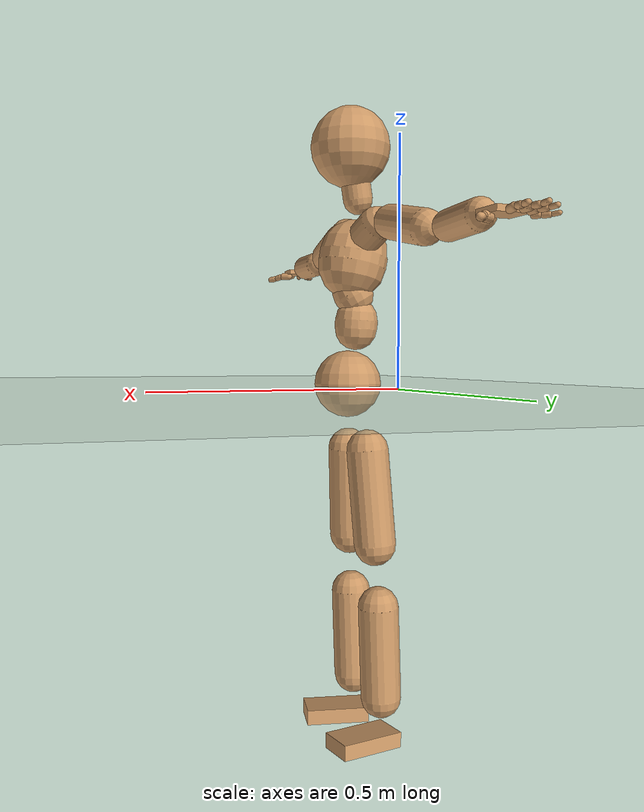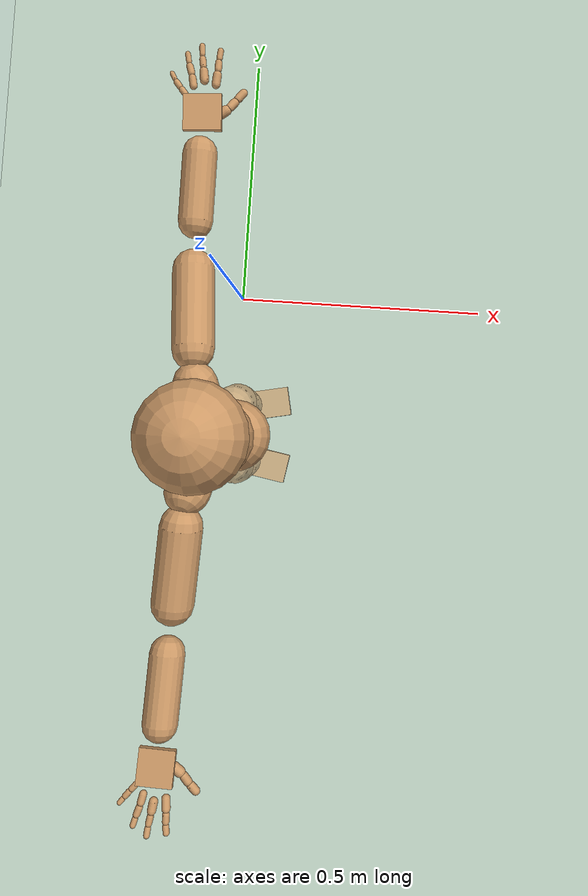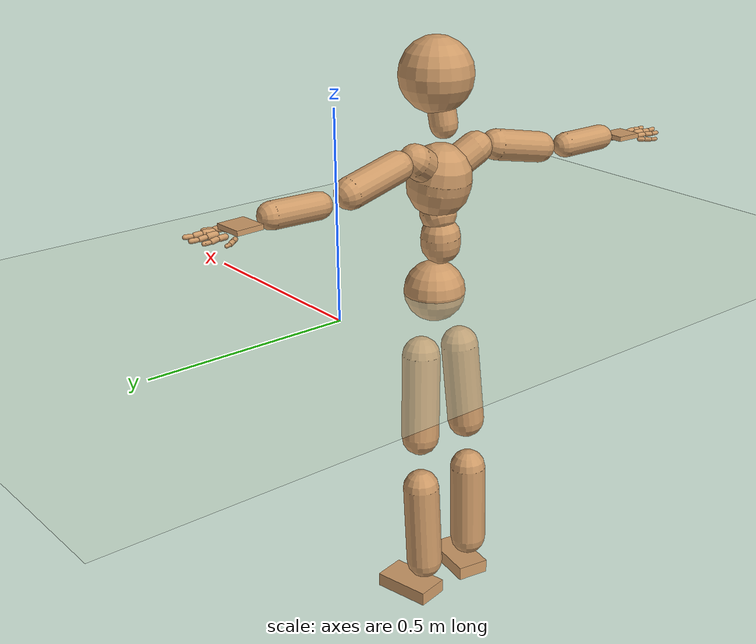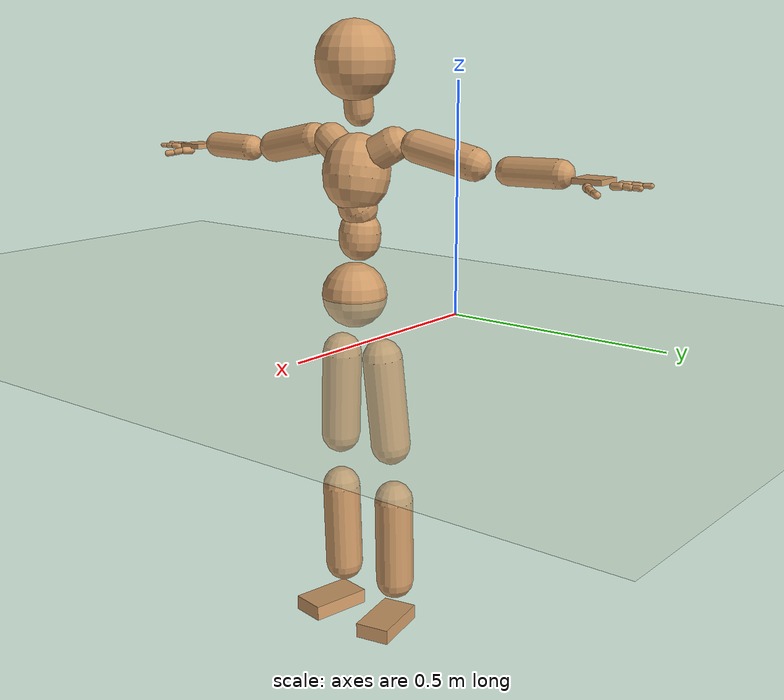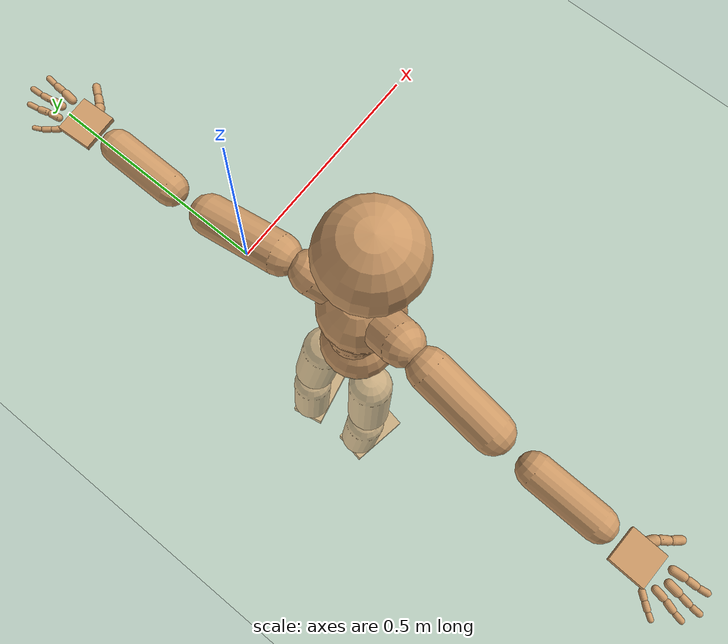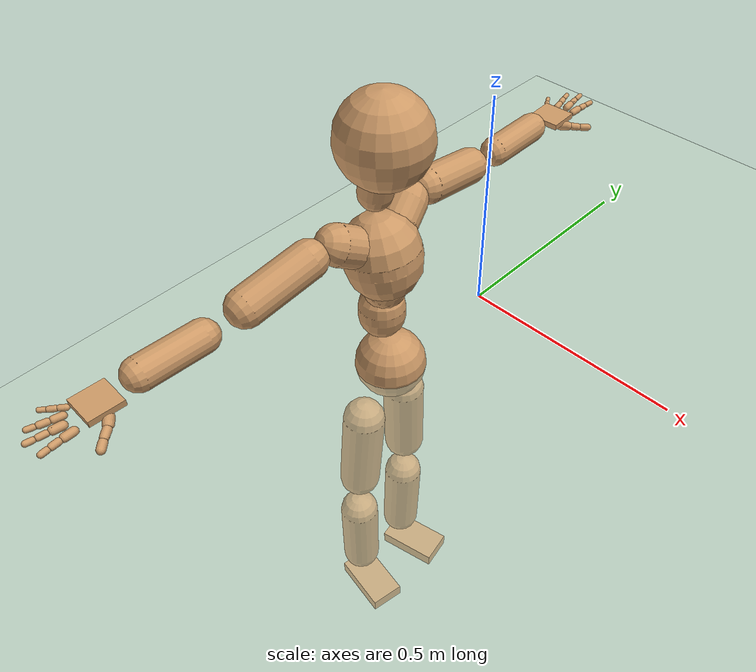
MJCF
<mujoco model="humanoid">
  <compiler coordinate="local" angle="radian"/>
  <default>
    <joint damping="0.0" armature="0.01" stiffness="0.0" limited="true"/>
    <geom conaffinity="1" condim="3" contype="7" margin="0.001" rgba="0.8 0.6 .4 1"/>
  </default>
  <asset>
    <texture type="skybox" builtin="gradient" rgb1=".4 .5 .6" rgb2="0 0 0" width="100" height="100"/>
    <texture builtin="flat" height="1278" mark="cross" markrgb="1 1 1" name="texgeom" random="0.01" rgb1="0.8 0.6 0.4" rgb2="0.8 0.6 0.4" type="cube" width="127"/>
    <texture builtin="checker" height="100" name="texplane" rgb1="0 0 0" rgb2="0.8 0.8 0.8" type="2d" width="100"/>
    <material name="MatPlane" reflectance="0.5" shininess="1" specular="1" texrepeat="60 60" texture="texplane"/>
    <material name="geom" texture="texgeom" texuniform="true"/>
  </asset>
  <worldbody>
    <light cutoff="100" diffuse="1 1 1" dir="-0 0 -1.3" directional="true" exponent="1" pos="0 0 1.3" specular=".1 .1 .1"/>
    <geom conaffinity="1" condim="3" name="floor" pos="0 0 0" rgba="0.8 0.9 0.8 1" size="100 100 .2" type="plane" material="MatPlane"/>
    <body name="Pelvis" pos="0.0002 -0.29 0.0034">
      <freejoint name="Pelvis"/>
      <geom type="sphere" contype="1" conaffinity="1" density="500" size="0.0764" pos="0.0000 0.0000 0.0000" name="Pelvis"/>
      <body name="L_Hip" pos="-0.02 0.0583 -0.0774">
        <joint name="L_Hip_x" type="hinge" pos="0 0 0" axis="1 0 0" stiffness="800" damping="80" armature="0.02" range="-180.0000 180.0000"/>
        <joint name="L_Hip_y" type="hinge" pos="0 0 0" axis="0 1 0" stiffness="800" damping="80" armature="0.02" range="-180.0000 180.0000"/>
        <joint name="L_Hip_z" type="hinge" pos="0 0 0" axis="0 0 1" stiffness="800" damping="80" armature="0.02" range="-180.0000 180.0000"/>
        <geom type="capsule" contype="1" conaffinity="1" density="500" fromto="-0.0045 0.0047 -0.0716 -0.0181 0.0190 -0.2863" size="0.0475" name="L_Hip"/>
        <body name="L_Knee" pos="-0.0227 0.0237 -0.3579">
          <joint name="L_Knee_x" type="hinge" pos="0 0 0" axis="1 0 0" stiffness="800" damping="80" armature="0.02" range="-180.0000 180.0000"/>
          <joint name="L_Knee_y" type="hinge" pos="0 0 0" axis="0 1 0" stiffness="800" damping="80" armature="0.02" range="-180.0000 180.0000"/>
          <joint name="L_Knee_z" type="hinge" pos="0 0 0" axis="0 0 1" stiffness="800" damping="80" armature="0.02" range="-180.0000 180.0000"/>
          <geom type="capsule" contype="1" conaffinity="1" density="500" fromto="-0.0031 -0.0013 -0.0716 -0.0123 -0.0050 -0.2863" size="0.0464" name="L_Knee"/>
          <body name="L_Ankle" pos="-0.0154 -0.0063 -0.3579">
            <joint name="L_Ankle_x" type="hinge" pos="0 0 0" axis="1 0 0" stiffness="800" damping="80" armature="0.02" range="-180.0000 180.0000"/>
            <joint name="L_Ankle_y" type="hinge" pos="0 0 0" axis="0 1 0" stiffness="800" damping="80" armature="0.02" range="-180.0000 180.0000"/>
            <joint name="L_Ankle_z" type="hinge" pos="0 0 0" axis="0 0 1" stiffness="800" damping="80" armature="0.02" range="-180.0000 180.0000"/>
            <geom type="box" contype="1" conaffinity="1" density="500" pos="0.0491 0.0100 -0.0206" size="0.0752 0.0417 0.0178" quat="0.9950 0.0000 0.0000 0.0999" name="L_Ankle"/>
            <body name="L_Toe" pos="0.0981 0.0199 -0.0411">
              <joint name="L_Toe_x" type="hinge" pos="0 0 0" axis="1 0 0" stiffness="500" damping="50" armature="0.02" range="-180.0000 180.0000"/>
              <joint name="L_Toe_y" type="hinge" pos="0 0 0" axis="0 1 0" stiffness="500" damping="50" armature="0.02" range="-180.0000 180.0000"/>
              <joint name="L_Toe_z" type="hinge" pos="0 0 0" axis="0 0 1" stiffness="500" damping="50" armature="0.02" range="-180.0000 180.0000"/>
              <geom type="box" contype="1" conaffinity="1" density="500" pos="0.0000 0.0000 0.0218" size="0.0008 0.0021 0.001" quat="0.9942 0.0000 0.0000 0.1075" name="L_Toe"/>
            </body>
          </body>
        </body>
      </body>
      <body name="R_Hip" pos="-0.0219 -0.0575 -0.084">
        <joint name="R_Hip_x" type="hinge" pos="0 0 0" axis="1 0 0" stiffness="800" damping="80" armature="0.02" range="-180.0000 180.0000"/>
        <joint name="R_Hip_y" type="hinge" pos="0 0 0" axis="0 1 0" stiffness="800" damping="80" armature="0.02" range="-180.0000 180.0000"/>
        <joint name="R_Hip_z" type="hinge" pos="0 0 0" axis="0 0 1" stiffness="800" damping="80" armature="0.02" range="-180.0000 180.0000"/>
        <geom type="capsule" contype="1" conaffinity="1" density="500" fromto="-0.0034 -0.0053 -0.0707 -0.0136 -0.0213 -0.2826" size="0.0473" name="R_Hip"/>
        <body name="R_Knee" pos="-0.017 -0.0266 -0.3533">
          <joint name="R_Knee_x" type="hinge" pos="0 0 0" axis="1 0 0" stiffness="800" damping="80" armature="0.02" range="-180.0000 180.0000"/>
          <joint name="R_Knee_y" type="hinge" pos="0 0 0" axis="0 1 0" stiffness="800" damping="80" armature="0.02" range="-180.0000 180.0000"/>
          <joint name="R_Knee_z" type="hinge" pos="0 0 0" axis="0 0 1" stiffness="800" damping="80" armature="0.02" range="-180.0000 180.0000"/>
          <geom type="capsule" contype="1" conaffinity="1" density="500" fromto="-0.0023 0.0005 -0.0700 -0.0090 0.0019 -0.2800" size="0.0464" name="R_Knee"/>
          <body name="R_Ankle" pos="-0.0113 0.0024 -0.35">
            <joint name="R_Ankle_x" type="hinge" pos="0 0 0" axis="1 0 0" stiffness="800" damping="80" armature="0.02" range="-180.0000 180.0000"/>
            <joint name="R_Ankle_y" type="hinge" pos="0 0 0" axis="0 1 0" stiffness="800" damping="80" armature="0.02" range="-180.0000 180.0000"/>
            <joint name="R_Ankle_z" type="hinge" pos="0 0 0" axis="0 0 1" stiffness="800" damping="80" armature="0.02" range="-180.0000 180.0000"/>
            <geom type="box" contype="1" conaffinity="1" density="500" pos="0.0460 -0.0082 -0.0224" size="0.0752 0.0417 0.0178" quat="0.9961 0.0000 0.0000 -0.0885" name="R_Ankle"/>
            <body name="R_Toe" pos="0.092 -0.0165 -0.0448">
              <joint name="R_Toe_x" type="hinge" pos="0 0 0" axis="1 0 0" stiffness="500" damping="50" armature="0.02" range="-180.0000 180.0000"/>
              <joint name="R_Toe_y" type="hinge" pos="0 0 0" axis="0 1 0" stiffness="500" damping="50" armature="0.02" range="-180.0000 180.0000"/>
              <joint name="R_Toe_z" type="hinge" pos="0 0 0" axis="0 0 1" stiffness="500" damping="50" armature="0.02" range="-180.0000 180.0000"/>
              <geom type="box" contype="1" conaffinity="1" density="500" pos="0.0000 0.0000 0.0237" size="0.0008 0.0021 0.001" quat="0.9971 0.0000 0.0000 -0.0764" name="R_Toe"/>
            </body>
          </body>
        </body>
      </body>
      <body name="Torso" pos="-0.0191 -0.004 0.0868">
        <joint name="Torso_x" type="hinge" pos="0 0 0" axis="1 0 0" stiffness="1000" damping="100" armature="0.02" range="-180.0000 180.0000"/>
        <joint name="Torso_y" type="hinge" pos="0 0 0" axis="0 1 0" stiffness="1000" damping="100" armature="0.02" range="-180.0000 180.0000"/>
        <joint name="Torso_z" type="hinge" pos="0 0 0" axis="0 0 1" stiffness="1000" damping="100" armature="0.02" range="-180.0000 180.0000"/>
        <geom type="capsule" contype="1" conaffinity="1" density="500" fromto="-0.0019 0.0041 0.0597 -0.0012 0.0028 0.0398" size="0.049" name="Torso"/>
        <body name="Spine" pos="-0.0031 0.0069 0.0994">
          <joint name="Spine_x" type="hinge" pos="0 0 0" axis="1 0 0" stiffness="1000" damping="100" armature="0.02" range="-180.0000 180.0000"/>
          <joint name="Spine_y" type="hinge" pos="0 0 0" axis="0 1 0" stiffness="1000" damping="100" armature="0.02" range="-180.0000 180.0000"/>
          <joint name="Spine_z" type="hinge" pos="0 0 0" axis="0 0 1" stiffness="1000" damping="100" armature="0.02" range="-180.0000 180.0000"/>
          <geom type="capsule" contype="1" conaffinity="1" density="500" fromto="0.0125 -0.0023 0.0222 0.0083 -0.0015 0.0148" size="0.0449" name="Spine"/>
          <body name="Chest" pos="0.0208 -0.0038 0.0371">
            <joint name="Chest_x" type="hinge" pos="0 0 0" axis="1 0 0" stiffness="1000" damping="100" armature="0.02" range="-180.0000 180.0000"/>
            <joint name="Chest_y" type="hinge" pos="0 0 0" axis="0 1 0" stiffness="1000" damping="100" armature="0.02" range="-180.0000 180.0000"/>
            <joint name="Chest_z" type="hinge" pos="0 0 0" axis="0 0 1" stiffness="1000" damping="100" armature="0.02" range="-180.0000 180.0000"/>
            <geom type="capsule" contype="1" conaffinity="1" density="500" fromto="-0.0132 -0.0012 0.0714 -0.0088 -0.0008 0.0476" size="0.0783" name="Chest"/>
            <body name="Neck" pos="-0.0286 -0.0045 0.1667">
              <joint name="Neck_x" type="hinge" pos="0 0 0" axis="1 0 0" stiffness="500" damping="50" armature="0.02" range="-180.0000 180.0000"/>
              <joint name="Neck_y" type="hinge" pos="0 0 0" axis="0 1 0" stiffness="500" damping="50" armature="0.02" range="-180.0000 180.0000"/>
              <joint name="Neck_z" type="hinge" pos="0 0 0" axis="0 0 1" stiffness="500" damping="50" armature="0.02" range="-180.0000 180.0000"/>
              <geom type="capsule" contype="1" conaffinity="1" density="500" fromto="0.0051 0.0015 0.0285 0.0205 0.0059 0.1141" size="0.0337" name="Neck"/>
              <body name="Head" pos="0.0256 0.0074 0.1426">
                <joint name="Head_x" type="hinge" pos="0 0 0" axis="1 0 0" stiffness="500" damping="50" armature="0.02" range="-180.0000 180.0000"/>
                <joint name="Head_y" type="hinge" pos="0 0 0" axis="0 1 0" stiffness="500" damping="50" armature="0.02" range="-180.0000 180.0000"/>
                <joint name="Head_z" type="hinge" pos="0 0 0" axis="0 0 1" stiffness="500" damping="50" armature="0.02" range="-180.0000 180.0000"/>
                <geom type="sphere" contype="1" conaffinity="1" density="500" size="0.0902" pos="0.0000 0.0000 0.0000" name="Head"/>
              </body>
            </body>
            <body name="L_Thorax" pos="-0.016 0.0401 0.097">
              <joint name="L_Thorax_x" type="hinge" pos="0 0 0" axis="1 0 0" stiffness="500" damping="50" armature="0.02" range="-180.0000 180.0000"/>
              <joint name="L_Thorax_y" type="hinge" pos="0 0 0" axis="0 1 0" stiffness="500" damping="50" armature="0.02" range="-180.0000 180.0000"/>
              <joint name="L_Thorax_z" type="hinge" pos="0 0 0" axis="0 0 1" stiffness="500" damping="50" armature="0.02" range="-180.0000 180.0000"/>
              <geom type="capsule" contype="1" conaffinity="1" density="500" fromto="-0.0039 0.0127 0.0076 -0.0155 0.0507 0.0304" size="0.0394" name="L_Thorax"/>
              <body name="L_Shoulder" pos="-0.0194 0.0633 0.038">
                <joint name="L_Shoulder_x" type="hinge" pos="0 0 0" axis="1 0 0" stiffness="500" damping="50" armature="0.02" range="-180.0000 180.0000"/>
                <joint name="L_Shoulder_y" type="hinge" pos="0 0 0" axis="0 1 0" stiffness="500" damping="50" armature="0.02" range="-180.0000 180.0000"/>
                <joint name="L_Shoulder_z" type="hinge" pos="0 0 0" axis="0 0 1" stiffness="500" damping="50" armature="0.02" range="-180.0000 180.0000"/>
                <geom type="capsule" contype="1" conaffinity="1" density="500" fromto="-0.0045 0.0478 -0.0100 -0.0181 0.1912 -0.0401" size="0.0375" name="L_Shoulder"/>
                <body name="L_Elbow" pos="-0.0227 0.2389 -0.0501">
                  <joint name="L_Elbow_x" type="hinge" pos="0 0 0" axis="1 0 0" stiffness="500" damping="50" armature="0.02" range="-720.0000 720.0000"/>
                  <joint name="L_Elbow_y" type="hinge" pos="0 0 0" axis="0 1 0" stiffness="500" damping="50" armature="0.02" range="-720.0000 720.0000"/>
                  <joint name="L_Elbow_z" type="hinge" pos="0 0 0" axis="0 0 1" stiffness="500" damping="50" armature="0.02" range="-720.0000 720.0000"/>
                  <geom type="capsule" contype="1" conaffinity="1" density="500" fromto="0.0000 0.0409 0.0011 0.0002 0.1634 0.0042" size="0.0312" name="L_Elbow"/>
                  <body name="L_Wrist" pos="0.0002 0.2043 0.0053">
                    <joint name="L_Wrist_x" type="hinge" pos="0 0 0" axis="1 0 0" stiffness="300" damping="30" armature="0.02" range="-180.0000 180.0000"/>
                    <joint name="L_Wrist_y" type="hinge" pos="0 0 0" axis="0 1 0" stiffness="300" damping="30" armature="0.02" range="-180.0000 180.0000"/>
                    <joint name="L_Wrist_z" type="hinge" pos="0 0 0" axis="0 0 1" stiffness="300" damping="30" armature="0.02" range="-180.0000 180.0000"/>
                    <geom type="box" contype="1" conaffinity="1" density="500" pos="-0.0020 0.0362 -0.0078" size="0.0331 0.0348 0.0059" quat="0.7263 0.0000 0.0000 -0.6874" name="L_Wrist"/>
                    <body name="L_Index1" pos="0.0173 0.0853 -0.0137">
                      <joint name="L_Index1_x" type="hinge" pos="0 0 0" axis="1 0 0" stiffness="100" damping="10" armature="0.02" range="-180.0000 180.0000"/>
                      <joint name="L_Index1_y" type="hinge" pos="0 0 0" axis="0 1 0" stiffness="100" damping="10" armature="0.02" range="-180.0000 180.0000"/>
                      <joint name="L_Index1_z" type="hinge" pos="0 0 0" axis="0 0 1" stiffness="100" damping="10" armature="0.02" range="-180.0000 180.0000"/>
                      <geom type="capsule" contype="1" conaffinity="1" density="500" fromto="0.0005 0.0057 0.0004 0.0021 0.0230 0.0017" size="0.0078" name="L_Index1"/>
                      <body name="L_Index2" pos="0.0027 0.0287 0.0021">
                        <joint name="L_Index2_x" type="hinge" pos="0 0 0" axis="1 0 0" stiffness="100" damping="10" armature="0.02" range="-180.0000 180.0000"/>
                        <joint name="L_Index2_y" type="hinge" pos="0 0 0" axis="0 1 0" stiffness="100" damping="10" armature="0.02" range="-180.0000 180.0000"/>
                        <joint name="L_Index2_z" type="hinge" pos="0 0 0" axis="0 0 1" stiffness="100" damping="10" armature="0.02" range="-180.0000 180.0000"/>
                        <geom type="capsule" contype="1" conaffinity="1" density="500" fromto="0.0001 0.0041 -0.0003 0.0004 0.0165 -0.0011" size="0.0065" name="L_Index2"/>
                        <body name="L_Index3" pos="0.0005 0.0206 -0.0013">
                          <joint name="L_Index3_x" type="hinge" pos="0 0 0" axis="1 0 0" stiffness="100" damping="10" armature="0.02" range="-180.0000 180.0000"/>
                          <joint name="L_Index3_y" type="hinge" pos="0 0 0" axis="0 1 0" stiffness="100" damping="10" armature="0.02" range="-180.0000 180.0000"/>
                          <joint name="L_Index3_z" type="hinge" pos="0 0 0" axis="0 0 1" stiffness="100" damping="10" armature="0.02" range="-180.0000 180.0000"/>
                          <geom type="capsule" contype="1" conaffinity="1" density="500" fromto="0.0005 0.0045 0.0001 0.0020 0.0181 0.0005" size="0.0055" name="L_Index3"/>
                        </body>
                      </body>
                    </body>
                    <body name="L_Middle1" pos="-0.0024 0.0914 -0.0122">
                      <joint name="L_Middle1_x" type="hinge" pos="0 0 0" axis="1 0 0" stiffness="100" damping="10" armature="0.02" range="-180.0000 180.0000"/>
                      <joint name="L_Middle1_y" type="hinge" pos="0 0 0" axis="0 1 0" stiffness="100" damping="10" armature="0.02" range="-180.0000 180.0000"/>
                      <joint name="L_Middle1_z" type="hinge" pos="0 0 0" axis="0 0 1" stiffness="100" damping="10" armature="0.02" range="-180.0000 180.0000"/>
                      <geom type="capsule" contype="1" conaffinity="1" density="500" fromto="-0.0008 0.0054 0.0002 -0.0031 0.0217 0.0007" size="0.0079" name="L_Middle1"/>
                      <body name="L_Middle2" pos="-0.0038 0.0272 0.0009">
                        <joint name="L_Middle2_x" type="hinge" pos="0 0 0" axis="1 0 0" stiffness="100" damping="10" armature="0.02" range="-180.0000 180.0000"/>
                        <joint name="L_Middle2_y" type="hinge" pos="0 0 0" axis="0 1 0" stiffness="100" damping="10" armature="0.02" range="-180.0000 180.0000"/>
                        <joint name="L_Middle2_z" type="hinge" pos="0 0 0" axis="0 0 1" stiffness="100" damping="10" armature="0.02" range="-180.0000 180.0000"/>
                        <geom type="capsule" contype="1" conaffinity="1" density="500" fromto="-0.0007 0.0043 -0.0001 -0.0029 0.0170 -0.0003" size="0.006" name="L_Middle2"/>
                        <body name="L_Middle3" pos="-0.0036 0.0213 -0.0003">
                          <joint name="L_Middle3_x" type="hinge" pos="0 0 0" axis="1 0 0" stiffness="100" damping="10" armature="0.02" range="-180.0000 180.0000"/>
                          <joint name="L_Middle3_y" type="hinge" pos="0 0 0" axis="0 1 0" stiffness="100" damping="10" armature="0.02" range="-180.0000 180.0000"/>
                          <joint name="L_Middle3_z" type="hinge" pos="0 0 0" axis="0 0 1" stiffness="100" damping="10" armature="0.02" range="-180.0000 180.0000"/>
                          <geom type="capsule" contype="1" conaffinity="1" density="500" fromto="-0.0003 0.0047 0.0003 -0.0013 0.0186 0.0013" size="0.0054" name="L_Middle3"/>
                        </body>
                      </body>
                    </body>
                    <body name="L_Pinky1" pos="-0.0353 0.0696 -0.0184">
                      <joint name="L_Pinky1_x" type="hinge" pos="0 0 0" axis="1 0 0" stiffness="100" damping="10" armature="0.02" range="-180.0000 180.0000"/>
                      <joint name="L_Pinky1_y" type="hinge" pos="0 0 0" axis="0 1 0" stiffness="100" damping="10" armature="0.02" range="-180.0000 180.0000"/>
                      <joint name="L_Pinky1_z" type="hinge" pos="0 0 0" axis="0 0 1" stiffness="100" damping="10" armature="0.02" range="-180.0000 180.0000"/>
                      <geom type="capsule" contype="1" conaffinity="1" density="500" fromto="-0.0022 0.0026 -0.0000 -0.0087 0.0103 -0.0001" size="0.0057" name="L_Pinky1"/>
                      <body name="L_Pinky2" pos="-0.0109 0.0129 -0.0002">
                        <joint name="L_Pinky2_x" type="hinge" pos="0 0 0" axis="1 0 0" stiffness="100" damping="10" armature="0.02" range="-180.0000 180.0000"/>
                        <joint name="L_Pinky2_y" type="hinge" pos="0 0 0" axis="0 1 0" stiffness="100" damping="10" armature="0.02" range="-180.0000 180.0000"/>
                        <joint name="L_Pinky2_z" type="hinge" pos="0 0 0" axis="0 0 1" stiffness="100" damping="10" armature="0.02" range="-180.0000 180.0000"/>
                        <geom type="capsule" contype="1" conaffinity="1" density="500" fromto="-0.0021 0.0027 -0.0001 -0.0085 0.0107 -0.0004" size="0.0056" name="L_Pinky2"/>
                        <body name="L_Pinky3" pos="-0.0106 0.0134 -0.0005">
                          <joint name="L_Pinky3_x" type="hinge" pos="0 0 0" axis="1 0 0" stiffness="100" damping="10" armature="0.02" range="-180.0000 180.0000"/>
                          <joint name="L_Pinky3_y" type="hinge" pos="0 0 0" axis="0 1 0" stiffness="100" damping="10" armature="0.02" range="-180.0000 180.0000"/>
                          <joint name="L_Pinky3_z" type="hinge" pos="0 0 0" axis="0 0 1" stiffness="100" damping="10" armature="0.02" range="-180.0000 180.0000"/>
                          <geom type="capsule" contype="1" conaffinity="1" density="500" fromto="-0.0017 0.0031 0.0003 -0.0069 0.0123 0.0012" size="0.0044" name="L_Pinky3"/>
                        </body>
                      </body>
                    </body>
                    <body name="L_Ring1" pos="-0.0216 0.081 -0.0144">
                      <joint name="L_Ring1_x" type="hinge" pos="0 0 0" axis="1 0 0" stiffness="100" damping="10" armature="0.02" range="-180.0000 180.0000"/>
                      <joint name="L_Ring1_y" type="hinge" pos="0 0 0" axis="0 1 0" stiffness="100" damping="10" armature="0.02" range="-180.0000 180.0000"/>
                      <joint name="L_Ring1_z" type="hinge" pos="0 0 0" axis="0 0 1" stiffness="100" damping="10" armature="0.02" range="-180.0000 180.0000"/>
                      <geom type="capsule" contype="1" conaffinity="1" density="500" fromto="-0.0010 0.0049 0.0003 -0.0039 0.0196 0.0011" size="0.0068" name="L_Ring1"/>
                      <body name="L_Ring2" pos="-0.0049 0.0244 0.0014">
                        <joint name="L_Ring2_x" type="hinge" pos="0 0 0" axis="1 0 0" stiffness="100" damping="10" armature="0.02" range="-180.0000 180.0000"/>
                        <joint name="L_Ring2_y" type="hinge" pos="0 0 0" axis="0 1 0" stiffness="100" damping="10" armature="0.02" range="-180.0000 180.0000"/>
                        <joint name="L_Ring2_z" type="hinge" pos="0 0 0" axis="0 0 1" stiffness="100" damping="10" armature="0.02" range="-180.0000 180.0000"/>
                        <geom type="capsule" contype="1" conaffinity="1" density="500" fromto="-0.0013 0.0041 -0.0001 -0.0052 0.0163 -0.0005" size="0.0064" name="L_Ring2"/>
                        <body name="L_Ring3" pos="-0.0065 0.0203 -0.0006">
                          <joint name="L_Ring3_x" type="hinge" pos="0 0 0" axis="1 0 0" stiffness="100" damping="10" armature="0.02" range="-180.0000 180.0000"/>
                          <joint name="L_Ring3_y" type="hinge" pos="0 0 0" axis="0 1 0" stiffness="100" damping="10" armature="0.02" range="-180.0000 180.0000"/>
                          <joint name="L_Ring3_z" type="hinge" pos="0 0 0" axis="0 0 1" stiffness="100" damping="10" armature="0.02" range="-180.0000 180.0000"/>
                          <geom type="capsule" contype="1" conaffinity="1" density="500" fromto="-0.0009 0.0045 0.0003 -0.0036 0.0179 0.0011" size="0.005" name="L_Ring3"/>
                        </body>
                      </body>
                    </body>
                    <body name="L_Thumb1" pos="0.022 0.0343 -0.0192">
                      <joint name="L_Thumb1_x" type="hinge" pos="0 0 0" axis="1 0 0" stiffness="100" damping="10" armature="0.02" range="-180.0000 180.0000"/>
                      <joint name="L_Thumb1_y" type="hinge" pos="0 0 0" axis="0 1 0" stiffness="100" damping="10" armature="0.02" range="-180.0000 180.0000"/>
                      <joint name="L_Thumb1_z" type="hinge" pos="0 0 0" axis="0 0 1" stiffness="100" damping="10" armature="0.02" range="-180.0000 180.0000"/>
                      <geom type="capsule" contype="1" conaffinity="1" density="500" fromto="0.0041 0.0029 0.0000 0.0165 0.0117 0.0001" size="0.0098" name="L_Thumb1"/>
                      <body name="L_Thumb2" pos="0.0207 0.0146 0.0002">
                        <joint name="L_Thumb2_x" type="hinge" pos="0 0 0" axis="1 0 0" stiffness="100" damping="10" armature="0.02" range="-180.0000 180.0000"/>
                        <joint name="L_Thumb2_y" type="hinge" pos="0 0 0" axis="0 1 0" stiffness="100" damping="10" armature="0.02" range="-180.0000 180.0000"/>
                        <joint name="L_Thumb2_z" type="hinge" pos="0 0 0" axis="0 0 1" stiffness="100" damping="10" armature="0.02" range="-180.0000 180.0000"/>
                        <geom type="capsule" contype="1" conaffinity="1" density="500" fromto="0.0026 0.0036 -0.0010 0.0102 0.0144 -0.0041" size="0.0079" name="L_Thumb2"/>
                        <body name="L_Thumb3" pos="0.0128 0.018 -0.0051">
                          <joint name="L_Thumb3_x" type="hinge" pos="0 0 0" axis="1 0 0" stiffness="100" damping="10" armature="0.02" range="-180.0000 180.0000"/>
                          <joint name="L_Thumb3_y" type="hinge" pos="0 0 0" axis="0 1 0" stiffness="100" damping="10" armature="0.02" range="-180.0000 180.0000"/>
                          <joint name="L_Thumb3_z" type="hinge" pos="0 0 0" axis="0 0 1" stiffness="100" damping="10" armature="0.02" range="-180.0000 180.0000"/>
                          <geom type="capsule" contype="1" conaffinity="1" density="500" fromto="0.0030 0.0040 -0.0006 0.0118 0.0160 -0.0025" size="0.0075" name="L_Thumb3"/>
                        </body>
                      </body>
                    </body>
                  </body>
                </body>
              </body>
            </body>
            <body name="R_Thorax" pos="-0.0213 -0.0418 0.0935">
              <joint name="R_Thorax_x" type="hinge" pos="0 0 0" axis="1 0 0" stiffness="500" damping="50" armature="0.02" range="-180.0000 180.0000"/>
              <joint name="R_Thorax_y" type="hinge" pos="0 0 0" axis="0 1 0" stiffness="500" damping="50" armature="0.02" range="-180.0000 180.0000"/>
              <joint name="R_Thorax_z" type="hinge" pos="0 0 0" axis="0 0 1" stiffness="500" damping="50" armature="0.02" range="-180.0000 180.0000"/>
              <geom type="capsule" contype="1" conaffinity="1" density="500" fromto="-0.0028 -0.0135 0.0082 -0.0112 -0.0539 0.0327" size="0.0404" name="R_Thorax"/>
              <body name="R_Shoulder" pos="-0.014 -0.0674 0.0409">
                <joint name="R_Shoulder_x" type="hinge" pos="0 0 0" axis="1 0 0" stiffness="500" damping="50" armature="0.02" range="-180.0000 180.0000"/>
                <joint name="R_Shoulder_y" type="hinge" pos="0 0 0" axis="0 1 0" stiffness="500" damping="50" armature="0.02" range="-180.0000 180.0000"/>
                <joint name="R_Shoulder_z" type="hinge" pos="0 0 0" axis="0 0 1" stiffness="500" damping="50" armature="0.02" range="-180.0000 180.0000"/>
                <geom type="capsule" contype="1" conaffinity="1" density="500" fromto="-0.0034 -0.0463 -0.0093 -0.0135 -0.1851 -0.0370" size="0.0379" name="R_Shoulder"/>
                <body name="R_Elbow" pos="-0.0168 -0.2314 -0.0463">
                  <joint name="R_Elbow_x" type="hinge" pos="0 0 0" axis="1 0 0" stiffness="500" damping="50" armature="0.02" range="-720.0000 720.0000"/>
                  <joint name="R_Elbow_y" type="hinge" pos="0 0 0" axis="0 1 0" stiffness="500" damping="50" armature="0.02" range="-720.0000 720.0000"/>
                  <joint name="R_Elbow_z" type="hinge" pos="0 0 0" axis="0 0 1" stiffness="500" damping="50" armature="0.02" range="-720.0000 720.0000"/>
                  <geom type="capsule" contype="1" conaffinity="1" density="500" fromto="-0.0013 -0.0411 0.0003 -0.0054 -0.1644 0.0011" size="0.0314" name="R_Elbow"/>
                  <body name="R_Wrist" pos="-0.0067 -0.2054 0.0014">
                    <joint name="R_Wrist_x" type="hinge" pos="0 0 0" axis="1 0 0" stiffness="300" damping="30" armature="0.02" range="-180.0000 180.0000"/>
                    <joint name="R_Wrist_y" type="hinge" pos="0 0 0" axis="0 1 0" stiffness="300" damping="30" armature="0.02" range="-180.0000 180.0000"/>
                    <joint name="R_Wrist_z" type="hinge" pos="0 0 0" axis="0 0 1" stiffness="300" damping="30" armature="0.02" range="-180.0000 180.0000"/>
                    <geom type="box" contype="1" conaffinity="1" density="500" pos="-0.0015 -0.0357 -0.0074" size="0.0331 0.0324 0.0061" quat="0.7220 0.0000 0.0000 0.6919" name="R_Wrist"/>
                    <body name="R_Index1" pos="0.0183 -0.0844 -0.013">
                      <joint name="R_Index1_x" type="hinge" pos="0 0 0" axis="1 0 0" stiffness="100" damping="10" armature="0.02" range="-180.0000 180.0000"/>
                      <joint name="R_Index1_y" type="hinge" pos="0 0 0" axis="0 1 0" stiffness="100" damping="10" armature="0.02" range="-180.0000 180.0000"/>
                      <joint name="R_Index1_z" type="hinge" pos="0 0 0" axis="0 0 1" stiffness="100" damping="10" armature="0.02" range="-180.0000 180.0000"/>
                      <geom type="capsule" contype="1" conaffinity="1" density="500" fromto="0.0005 -0.0057 0.0004 0.0021 -0.0230 0.0017" size="0.0078" name="R_Index1"/>
                      <body name="R_Index2" pos="0.0027 -0.0287 0.0021">
                        <joint name="R_Index2_x" type="hinge" pos="0 0 0" axis="1 0 0" stiffness="100" damping="10" armature="0.02" range="-180.0000 180.0000"/>
                        <joint name="R_Index2_y" type="hinge" pos="0 0 0" axis="0 1 0" stiffness="100" damping="10" armature="0.02" range="-180.0000 180.0000"/>
                        <joint name="R_Index2_z" type="hinge" pos="0 0 0" axis="0 0 1" stiffness="100" damping="10" armature="0.02" range="-180.0000 180.0000"/>
                        <geom type="capsule" contype="1" conaffinity="1" density="500" fromto="0.0001 -0.0041 -0.0003 0.0004 -0.0165 -0.0011" size="0.0065" name="R_Index2"/>
                        <body name="R_Index3" pos="0.0005 -0.0206 -0.0013">
                          <joint name="R_Index3_x" type="hinge" pos="0 0 0" axis="1 0 0" stiffness="100" damping="10" armature="0.02" range="-180.0000 180.0000"/>
                          <joint name="R_Index3_y" type="hinge" pos="0 0 0" axis="0 1 0" stiffness="100" damping="10" armature="0.02" range="-180.0000 180.0000"/>
                          <joint name="R_Index3_z" type="hinge" pos="0 0 0" axis="0 0 1" stiffness="100" damping="10" armature="0.02" range="-180.0000 180.0000"/>
                          <geom type="capsule" contype="1" conaffinity="1" density="500" fromto="0.0005 -0.0037 0.0001 0.0020 -0.0149 0.0005" size="0.0058" name="R_Index3"/>
                        </body>
                      </body>
                    </body>
                    <body name="R_Middle1" pos="-0.0014 -0.0905 -0.0115">
                      <joint name="R_Middle1_x" type="hinge" pos="0 0 0" axis="1 0 0" stiffness="100" damping="10" armature="0.02" range="-180.0000 180.0000"/>
                      <joint name="R_Middle1_y" type="hinge" pos="0 0 0" axis="0 1 0" stiffness="100" damping="10" armature="0.02" range="-180.0000 180.0000"/>
                      <joint name="R_Middle1_z" type="hinge" pos="0 0 0" axis="0 0 1" stiffness="100" damping="10" armature="0.02" range="-180.0000 180.0000"/>
                      <geom type="capsule" contype="1" conaffinity="1" density="500" fromto="-0.0008 -0.0054 0.0002 -0.0031 -0.0217 0.0007" size="0.0079" name="R_Middle1"/>
                      <body name="R_Middle2" pos="-0.0038 -0.0272 0.0009">
                        <joint name="R_Middle2_x" type="hinge" pos="0 0 0" axis="1 0 0" stiffness="100" damping="10" armature="0.02" range="-180.0000 180.0000"/>
                        <joint name="R_Middle2_y" type="hinge" pos="0 0 0" axis="0 1 0" stiffness="100" damping="10" armature="0.02" range="-180.0000 180.0000"/>
                        <joint name="R_Middle2_z" type="hinge" pos="0 0 0" axis="0 0 1" stiffness="100" damping="10" armature="0.02" range="-180.0000 180.0000"/>
                        <geom type="capsule" contype="1" conaffinity="1" density="500" fromto="-0.0007 -0.0043 -0.0001 -0.0029 -0.0170 -0.0003" size="0.006" name="R_Middle2"/>
                        <body name="R_Middle3" pos="-0.0036 -0.0213 -0.0003">
                          <joint name="R_Middle3_x" type="hinge" pos="0 0 0" axis="1 0 0" stiffness="100" damping="10" armature="0.02" range="-180.0000 180.0000"/>
                          <joint name="R_Middle3_y" type="hinge" pos="0 0 0" axis="0 1 0" stiffness="100" damping="10" armature="0.02" range="-180.0000 180.0000"/>
                          <joint name="R_Middle3_z" type="hinge" pos="0 0 0" axis="0 0 1" stiffness="100" damping="10" armature="0.02" range="-180.0000 180.0000"/>
                          <geom type="capsule" contype="1" conaffinity="1" density="500" fromto="-0.0003 -0.0039 0.0003 -0.0013 -0.0154 0.0013" size="0.0056" name="R_Middle3"/>
                        </body>
                      </body>
                    </body>
                    <body name="R_Pinky1" pos="-0.0344 -0.0688 -0.0177">
                      <joint name="R_Pinky1_x" type="hinge" pos="0 0 0" axis="1 0 0" stiffness="100" damping="10" armature="0.02" range="-180.0000 180.0000"/>
                      <joint name="R_Pinky1_y" type="hinge" pos="0 0 0" axis="0 1 0" stiffness="100" damping="10" armature="0.02" range="-180.0000 180.0000"/>
                      <joint name="R_Pinky1_z" type="hinge" pos="0 0 0" axis="0 0 1" stiffness="100" damping="10" armature="0.02" range="-180.0000 180.0000"/>
                      <geom type="capsule" contype="1" conaffinity="1" density="500" fromto="-0.0022 -0.0026 -0.0000 -0.0087 -0.0103 -0.0001" size="0.0057" name="R_Pinky1"/>
                      <body name="R_Pinky2" pos="-0.0109 -0.0129 -0.0002">
                        <joint name="R_Pinky2_x" type="hinge" pos="0 0 0" axis="1 0 0" stiffness="100" damping="10" armature="0.02" range="-180.0000 180.0000"/>
                        <joint name="R_Pinky2_y" type="hinge" pos="0 0 0" axis="0 1 0" stiffness="100" damping="10" armature="0.02" range="-180.0000 180.0000"/>
                        <joint name="R_Pinky2_z" type="hinge" pos="0 0 0" axis="0 0 1" stiffness="100" damping="10" armature="0.02" range="-180.0000 180.0000"/>
                        <geom type="capsule" contype="1" conaffinity="1" density="500" fromto="-0.0021 -0.0027 -0.0001 -0.0085 -0.0107 -0.0004" size="0.0056" name="R_Pinky2"/>
                        <body name="R_Pinky3" pos="-0.0106 -0.0134 -0.0005">
                          <joint name="R_Pinky3_x" type="hinge" pos="0 0 0" axis="1 0 0" stiffness="100" damping="10" armature="0.02" range="-180.0000 180.0000"/>
                          <joint name="R_Pinky3_y" type="hinge" pos="0 0 0" axis="0 1 0" stiffness="100" damping="10" armature="0.02" range="-180.0000 180.0000"/>
                          <joint name="R_Pinky3_z" type="hinge" pos="0 0 0" axis="0 0 1" stiffness="100" damping="10" armature="0.02" range="-180.0000 180.0000"/>
                          <geom type="capsule" contype="1" conaffinity="1" density="500" fromto="-0.0017 -0.0023 0.0003 -0.0069 -0.0091 0.0012" size="0.0047" name="R_Pinky3"/>
                        </body>
                      </body>
                    </body>
                    <body name="R_Ring1" pos="-0.0206 -0.0801 -0.0137">
                      <joint name="R_Ring1_x" type="hinge" pos="0 0 0" axis="1 0 0" stiffness="100" damping="10" armature="0.02" range="-180.0000 180.0000"/>
                      <joint name="R_Ring1_y" type="hinge" pos="0 0 0" axis="0 1 0" stiffness="100" damping="10" armature="0.02" range="-180.0000 180.0000"/>
                      <joint name="R_Ring1_z" type="hinge" pos="0 0 0" axis="0 0 1" stiffness="100" damping="10" armature="0.02" range="-180.0000 180.0000"/>
                      <geom type="capsule" contype="1" conaffinity="1" density="500" fromto="-0.0010 -0.0049 0.0003 -0.0039 -0.0196 0.0011" size="0.0068" name="R_Ring1"/>
                      <body name="R_Ring2" pos="-0.0049 -0.0244 0.0014">
                        <joint name="R_Ring2_x" type="hinge" pos="0 0 0" axis="1 0 0" stiffness="100" damping="10" armature="0.02" range="-180.0000 180.0000"/>
                        <joint name="R_Ring2_y" type="hinge" pos="0 0 0" axis="0 1 0" stiffness="100" damping="10" armature="0.02" range="-180.0000 180.0000"/>
                        <joint name="R_Ring2_z" type="hinge" pos="0 0 0" axis="0 0 1" stiffness="100" damping="10" armature="0.02" range="-180.0000 180.0000"/>
                        <geom type="capsule" contype="1" conaffinity="1" density="500" fromto="-0.0013 -0.0041 -0.0001 -0.0052 -0.0163 -0.0005" size="0.0064" name="R_Ring2"/>
                        <body name="R_Ring3" pos="-0.0065 -0.0203 -0.0006">
                          <joint name="R_Ring3_x" type="hinge" pos="0 0 0" axis="1 0 0" stiffness="100" damping="10" armature="0.02" range="-180.0000 180.0000"/>
                          <joint name="R_Ring3_y" type="hinge" pos="0 0 0" axis="0 1 0" stiffness="100" damping="10" armature="0.02" range="-180.0000 180.0000"/>
                          <joint name="R_Ring3_z" type="hinge" pos="0 0 0" axis="0 0 1" stiffness="100" damping="10" armature="0.02" range="-180.0000 180.0000"/>
                          <geom type="capsule" contype="1" conaffinity="1" density="500" fromto="-0.0009 -0.0037 0.0003 -0.0036 -0.0147 0.0011" size="0.0053" name="R_Ring3"/>
                        </body>
                      </body>
                    </body>
                    <body name="R_Thumb1" pos="0.023 -0.0335 -0.0185">
                      <joint name="R_Thumb1_x" type="hinge" pos="0 0 0" axis="1 0 0" stiffness="100" damping="10" armature="0.02" range="-180.0000 180.0000"/>
                      <joint name="R_Thumb1_y" type="hinge" pos="0 0 0" axis="0 1 0" stiffness="100" damping="10" armature="0.02" range="-180.0000 180.0000"/>
                      <joint name="R_Thumb1_z" type="hinge" pos="0 0 0" axis="0 0 1" stiffness="100" damping="10" armature="0.02" range="-180.0000 180.0000"/>
                      <geom type="capsule" contype="1" conaffinity="1" density="500" fromto="0.0041 -0.0029 0.0000 0.0165 -0.0117 0.0001" size="0.0098" name="R_Thumb1"/>
                      <body name="R_Thumb2" pos="0.0207 -0.0146 0.0002">
                        <joint name="R_Thumb2_x" type="hinge" pos="0 0 0" axis="1 0 0" stiffness="100" damping="10" armature="0.02" range="-180.0000 180.0000"/>
                        <joint name="R_Thumb2_y" type="hinge" pos="0 0 0" axis="0 1 0" stiffness="100" damping="10" armature="0.02" range="-180.0000 180.0000"/>
                        <joint name="R_Thumb2_z" type="hinge" pos="0 0 0" axis="0 0 1" stiffness="100" damping="10" armature="0.02" range="-180.0000 180.0000"/>
                        <geom type="capsule" contype="1" conaffinity="1" density="500" fromto="0.0026 -0.0036 -0.0010 0.0102 -0.0144 -0.0041" size="0.0079" name="R_Thumb2"/>
                        <body name="R_Thumb3" pos="0.0128 -0.018 -0.0051">
                          <joint name="R_Thumb3_x" type="hinge" pos="0 0 0" axis="1 0 0" stiffness="100" damping="10" armature="0.02" range="-180.0000 180.0000"/>
                          <joint name="R_Thumb3_y" type="hinge" pos="0 0 0" axis="0 1 0" stiffness="100" damping="10" armature="0.02" range="-180.0000 180.0000"/>
                          <joint name="R_Thumb3_z" type="hinge" pos="0 0 0" axis="0 0 1" stiffness="100" damping="10" armature="0.02" range="-180.0000 180.0000"/>
                          <geom type="capsule" contype="1" conaffinity="1" density="500" fromto="0.0030 -0.0032 -0.0006 0.0118 -0.0128 -0.0025" size="0.0078" name="R_Thumb3"/>
                        </body>
                      </body>
                    </body>
                  </body>
                </body>
              </body>
            </body>
          </body>
        </body>
      </body>
    </body>
  </worldbody>
  <actuator>
    <motor name="L_Hip_x" joint="L_Hip_x" gear="500"/>
    <motor name="L_Hip_y" joint="L_Hip_y" gear="500"/>
    <motor name="L_Hip_z" joint="L_Hip_z" gear="500"/>
    <motor name="L_Knee_x" joint="L_Knee_x" gear="500"/>
    <motor name="L_Knee_y" joint="L_Knee_y" gear="500"/>
    <motor name="L_Knee_z" joint="L_Knee_z" gear="500"/>
    <motor name="L_Ankle_x" joint="L_Ankle_x" gear="500"/>
    <motor name="L_Ankle_y" joint="L_Ankle_y" gear="500"/>
    <motor name="L_Ankle_z" joint="L_Ankle_z" gear="500"/>
    <motor name="L_Toe_x" joint="L_Toe_x" gear="500"/>
    <motor name="L_Toe_y" joint="L_Toe_y" gear="500"/>
    <motor name="L_Toe_z" joint="L_Toe_z" gear="500"/>
    <motor name="R_Hip_x" joint="R_Hip_x" gear="500"/>
    <motor name="R_Hip_y" joint="R_Hip_y" gear="500"/>
    <motor name="R_Hip_z" joint="R_Hip_z" gear="500"/>
    <motor name="R_Knee_x" joint="R_Knee_x" gear="500"/>
    <motor name="R_Knee_y" joint="R_Knee_y" gear="500"/>
    <motor name="R_Knee_z" joint="R_Knee_z" gear="500"/>
    <motor name="R_Ankle_x" joint="R_Ankle_x" gear="500"/>
    <motor name="R_Ankle_y" joint="R_Ankle_y" gear="500"/>
    <motor name="R_Ankle_z" joint="R_Ankle_z" gear="500"/>
    <motor name="R_Toe_x" joint="R_Toe_x" gear="500"/>
    <motor name="R_Toe_y" joint="R_Toe_y" gear="500"/>
    <motor name="R_Toe_z" joint="R_Toe_z" gear="500"/>
    <motor name="Torso_x" joint="Torso_x" gear="500"/>
    <motor name="Torso_y" joint="Torso_y" gear="500"/>
    <motor name="Torso_z" joint="Torso_z" gear="500"/>
    <motor name="Spine_x" joint="Spine_x" gear="500"/>
    <motor name="Spine_y" joint="Spine_y" gear="500"/>
    <motor name="Spine_z" joint="Spine_z" gear="500"/>
    <motor name="Chest_x" joint="Chest_x" gear="500"/>
    <motor name="Chest_y" joint="Chest_y" gear="500"/>
    <motor name="Chest_z" joint="Chest_z" gear="500"/>
    <motor name="Neck_x" joint="Neck_x" gear="500"/>
    <motor name="Neck_y" joint="Neck_y" gear="500"/>
    <motor name="Neck_z" joint="Neck_z" gear="500"/>
    <motor name="Head_x" joint="Head_x" gear="500"/>
    <motor name="Head_y" joint="Head_y" gear="500"/>
    <motor name="Head_z" joint="Head_z" gear="500"/>
    <motor name="L_Thorax_x" joint="L_Thorax_x" gear="500"/>
    <motor name="L_Thorax_y" joint="L_Thorax_y" gear="500"/>
    <motor name="L_Thorax_z" joint="L_Thorax_z" gear="500"/>
    <motor name="L_Shoulder_x" joint="L_Shoulder_x" gear="500"/>
    <motor name="L_Shoulder_y" joint="L_Shoulder_y" gear="500"/>
    <motor name="L_Shoulder_z" joint="L_Shoulder_z" gear="500"/>
    <motor name="L_Elbow_x" joint="L_Elbow_x" gear="500"/>
    <motor name="L_Elbow_y" joint="L_Elbow_y" gear="500"/>
    <motor name="L_Elbow_z" joint="L_Elbow_z" gear="500"/>
    <motor name="L_Wrist_x" joint="L_Wrist_x" gear="500"/>
    <motor name="L_Wrist_y" joint="L_Wrist_y" gear="500"/>
    <motor name="L_Wrist_z" joint="L_Wrist_z" gear="500"/>
    <motor name="L_Index1_x" joint="L_Index1_x" gear="500"/>
    <motor name="L_Index1_y" joint="L_Index1_y" gear="500"/>
    <motor name="L_Index1_z" joint="L_Index1_z" gear="500"/>
    <motor name="L_Index2_x" joint="L_Index2_x" gear="500"/>
    <motor name="L_Index2_y" joint="L_Index2_y" gear="500"/>
    <motor name="L_Index2_z" joint="L_Index2_z" gear="500"/>
    <motor name="L_Index3_x" joint="L_Index3_x" gear="500"/>
    <motor name="L_Index3_y" joint="L_Index3_y" gear="500"/>
    <motor name="L_Index3_z" joint="L_Index3_z" gear="500"/>
    <motor name="L_Middle1_x" joint="L_Middle1_x" gear="500"/>
    <motor name="L_Middle1_y" joint="L_Middle1_y" gear="500"/>
    <motor name="L_Middle1_z" joint="L_Middle1_z" gear="500"/>
    <motor name="L_Middle2_x" joint="L_Middle2_x" gear="500"/>
    <motor name="L_Middle2_y" joint="L_Middle2_y" gear="500"/>
    <motor name="L_Middle2_z" joint="L_Middle2_z" gear="500"/>
    <motor name="L_Middle3_x" joint="L_Middle3_x" gear="500"/>
    <motor name="L_Middle3_y" joint="L_Middle3_y" gear="500"/>
    <motor name="L_Middle3_z" joint="L_Middle3_z" gear="500"/>
    <motor name="L_Pinky1_x" joint="L_Pinky1_x" gear="500"/>
    <motor name="L_Pinky1_y" joint="L_Pinky1_y" gear="500"/>
    <motor name="L_Pinky1_z" joint="L_Pinky1_z" gear="500"/>
    <motor name="L_Pinky2_x" joint="L_Pinky2_x" gear="500"/>
    <motor name="L_Pinky2_y" joint="L_Pinky2_y" gear="500"/>
    <motor name="L_Pinky2_z" joint="L_Pinky2_z" gear="500"/>
    <motor name="L_Pinky3_x" joint="L_Pinky3_x" gear="500"/>
    <motor name="L_Pinky3_y" joint="L_Pinky3_y" gear="500"/>
    <motor name="L_Pinky3_z" joint="L_Pinky3_z" gear="500"/>
    <motor name="L_Ring1_x" joint="L_Ring1_x" gear="500"/>
    <motor name="L_Ring1_y" joint="L_Ring1_y" gear="500"/>
    <motor name="L_Ring1_z" joint="L_Ring1_z" gear="500"/>
    <motor name="L_Ring2_x" joint="L_Ring2_x" gear="500"/>
    <motor name="L_Ring2_y" joint="L_Ring2_y" gear="500"/>
    <motor name="L_Ring2_z" joint="L_Ring2_z" gear="500"/>
    <motor name="L_Ring3_x" joint="L_Ring3_x" gear="500"/>
    <motor name="L_Ring3_y" joint="L_Ring3_y" gear="500"/>
    <motor name="L_Ring3_z" joint="L_Ring3_z" gear="500"/>
    <motor name="L_Thumb1_x" joint="L_Thumb1_x" gear="500"/>
    <motor name="L_Thumb1_y" joint="L_Thumb1_y" gear="500"/>
    <motor name="L_Thumb1_z" joint="L_Thumb1_z" gear="500"/>
    <motor name="L_Thumb2_x" joint="L_Thumb2_x" gear="500"/>
    <motor name="L_Thumb2_y" joint="L_Thumb2_y" gear="500"/>
    <motor name="L_Thumb2_z" joint="L_Thumb2_z" gear="500"/>
    <motor name="L_Thumb3_x" joint="L_Thumb3_x" gear="500"/>
    <motor name="L_Thumb3_y" joint="L_Thumb3_y" gear="500"/>
    <motor name="L_Thumb3_z" joint="L_Thumb3_z" gear="500"/>
    <motor name="R_Thorax_x" joint="R_Thorax_x" gear="500"/>
    <motor name="R_Thorax_y" joint="R_Thorax_y" gear="500"/>
    <motor name="R_Thorax_z" joint="R_Thorax_z" gear="500"/>
    <motor name="R_Shoulder_x" joint="R_Shoulder_x" gear="500"/>
    <motor name="R_Shoulder_y" joint="R_Shoulder_y" gear="500"/>
    <motor name="R_Shoulder_z" joint="R_Shoulder_z" gear="500"/>
    <motor name="R_Elbow_x" joint="R_Elbow_x" gear="500"/>
    <motor name="R_Elbow_y" joint="R_Elbow_y" gear="500"/>
    <motor name="R_Elbow_z" joint="R_Elbow_z" gear="500"/>
    <motor name="R_Wrist_x" joint="R_Wrist_x" gear="500"/>
    <motor name="R_Wrist_y" joint="R_Wrist_y" gear="500"/>
    <motor name="R_Wrist_z" joint="R_Wrist_z" gear="500"/>
    <motor name="R_Index1_x" joint="R_Index1_x" gear="500"/>
    <motor name="R_Index1_y" joint="R_Index1_y" gear="500"/>
    <motor name="R_Index1_z" joint="R_Index1_z" gear="500"/>
    <motor name="R_Index2_x" joint="R_Index2_x" gear="500"/>
    <motor name="R_Index2_y" joint="R_Index2_y" gear="500"/>
    <motor name="R_Index2_z" joint="R_Index2_z" gear="500"/>
    <motor name="R_Index3_x" joint="R_Index3_x" gear="500"/>
    <motor name="R_Index3_y" joint="R_Index3_y" gear="500"/>
    <motor name="R_Index3_z" joint="R_Index3_z" gear="500"/>
    <motor name="R_Middle1_x" joint="R_Middle1_x" gear="500"/>
    <motor name="R_Middle1_y" joint="R_Middle1_y" gear="500"/>
    <motor name="R_Middle1_z" joint="R_Middle1_z" gear="500"/>
    <motor name="R_Middle2_x" joint="R_Middle2_x" gear="500"/>
    <motor name="R_Middle2_y" joint="R_Middle2_y" gear="500"/>
    <motor name="R_Middle2_z" joint="R_Middle2_z" gear="500"/>
    <motor name="R_Middle3_x" joint="R_Middle3_x" gear="500"/>
    <motor name="R_Middle3_y" joint="R_Middle3_y" gear="500"/>
    <motor name="R_Middle3_z" joint="R_Middle3_z" gear="500"/>
    <motor name="R_Pinky1_x" joint="R_Pinky1_x" gear="500"/>
    <motor name="R_Pinky1_y" joint="R_Pinky1_y" gear="500"/>
    <motor name="R_Pinky1_z" joint="R_Pinky1_z" gear="500"/>
    <motor name="R_Pinky2_x" joint="R_Pinky2_x" gear="500"/>
    <motor name="R_Pinky2_y" joint="R_Pinky2_y" gear="500"/>
    <motor name="R_Pinky2_z" joint="R_Pinky2_z" gear="500"/>
    <motor name="R_Pinky3_x" joint="R_Pinky3_x" gear="500"/>
    <motor name="R_Pinky3_y" joint="R_Pinky3_y" gear="500"/>
    <motor name="R_Pinky3_z" joint="R_Pinky3_z" gear="500"/>
    <motor name="R_Ring1_x" joint="R_Ring1_x" gear="500"/>
    <motor name="R_Ring1_y" joint="R_Ring1_y" gear="500"/>
    <motor name="R_Ring1_z" joint="R_Ring1_z" gear="500"/>
    <motor name="R_Ring2_x" joint="R_Ring2_x" gear="500"/>
    <motor name="R_Ring2_y" joint="R_Ring2_y" gear="500"/>
    <motor name="R_Ring2_z" joint="R_Ring2_z" gear="500"/>
    <motor name="R_Ring3_x" joint="R_Ring3_x" gear="500"/>
    <motor name="R_Ring3_y" joint="R_Ring3_y" gear="500"/>
    <motor name="R_Ring3_z" joint="R_Ring3_z" gear="500"/>
    <motor name="R_Thumb1_x" joint="R_Thumb1_x" gear="500"/>
    <motor name="R_Thumb1_y" joint="R_Thumb1_y" gear="500"/>
    <motor name="R_Thumb1_z" joint="R_Thumb1_z" gear="500"/>
    <motor name="R_Thumb2_x" joint="R_Thumb2_x" gear="500"/>
    <motor name="R_Thumb2_y" joint="R_Thumb2_y" gear="500"/>
    <motor name="R_Thumb2_z" joint="R_Thumb2_z" gear="500"/>
    <motor name="R_Thumb3_x" joint="R_Thumb3_x" gear="500"/>
    <motor name="R_Thumb3_y" joint="R_Thumb3_y" gear="500"/>
    <motor name="R_Thumb3_z" joint="R_Thumb3_z" gear="500"/>
  </actuator>
  <contact>
    <exclude body1="Torso" body2="Chest"/>
    <exclude body1="Head" body2="Chest"/>
    <exclude body1="R_Knee" body2="R_Toe"/>
    <exclude body1="R_Knee" body2="L_Ankle"/>
    <exclude body1="R_Knee" body2="L_Toe"/>
    <exclude body1="L_Knee" body2="L_Toe"/>
    <exclude body1="L_Knee" body2="R_Ankle"/>
    <exclude body1="L_Knee" body2="R_Toe"/>
    <exclude body1="L_Shoulder" body2="Chest"/>
    <exclude body1="R_Shoulder" body2="Chest"/>
  </contact>
  <sensor/>
  <size njmax="700" nconmax="700"/>
</mujoco>
